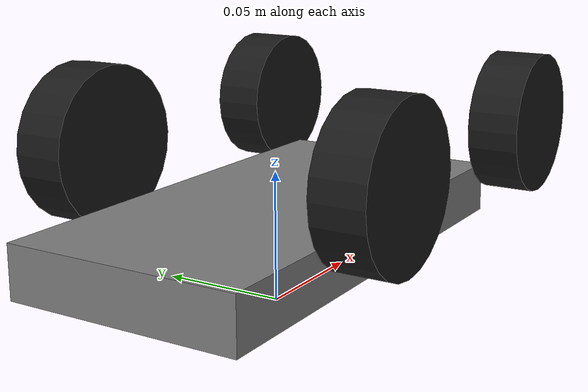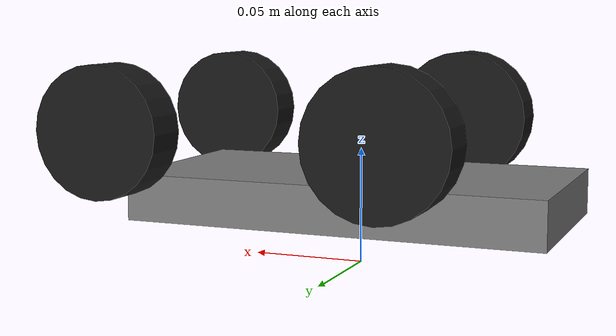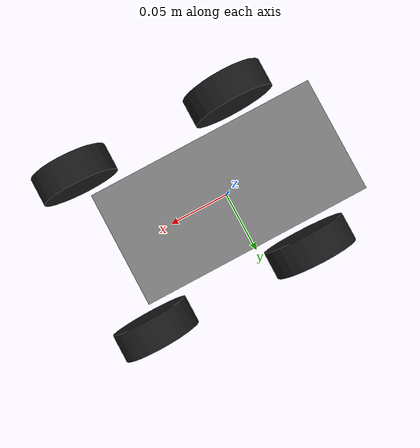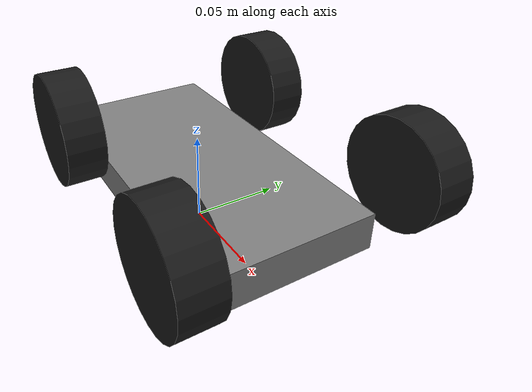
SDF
<sdf version="1.8">
  <model name="picarx">
    <!-- Base origin ~ at wheel center height to avoid bouncing -->
    <pose>0 0 0.03 0 0 0</pose>
    <static>false</static>

    <!-- BASE -->
    <link name="base_link">
      <pose>0 0 0 0 0 0</pose>
      <inertial>
        <mass>1.0</mass>
        <inertia>
          <!-- approx box 0.18 x 0.09 x 0.02 -->
          <ixx>0.00071</ixx>
          <iyy>0.00273</iyy>
          <izz>0.00338</izz>
        </inertia>
      </inertial>
      <collision name="base_col">
        <geometry><box><size>0.18 0.09 0.02</size></box></geometry>
        <surface><friction><ode><mu>1.0</mu><mu2>1.0</mu2></ode></friction></surface>
      </collision>
      <visual name="base_vis">
        <geometry><box><size>0.18 0.09 0.02</size></box></geometry>
        <material><ambient>0.5 0.5 0.5 1</ambient></material>
      </visual>
    </link>

    <!-- REAR LEFT WHEEL (driven) -->
    <link name="left_wheel">
      <pose>-0.03 0.06 0.03 1.5708 0 0</pose> <!-- roll 90deg so cylinder axis is Y -->
      <inertial><mass>0.05</mass><inertia>
        <ixx>0.00005</ixx><iyy>0.00002</iyy><izz>0.00005</izz>
      </inertia></inertial>
      <collision name="col">
        <geometry><cylinder><radius>0.03</radius><length>0.02</length></cylinder></geometry>
        <surface><friction><ode><mu>1.5</mu><mu2>1.5</mu2></ode></friction></surface>
      </collision>
      <visual name="vis">
        <geometry><cylinder><radius>0.03</radius><length>0.02</length></cylinder></geometry>
        <material><ambient>0.1 0.1 0.1 1</ambient></material>
      </visual>
    </link>

    <!-- REAR RIGHT WHEEL (driven) -->
    <link name="right_wheel">
      <pose>-0.03 -0.06 0.03 1.5708 0 0</pose>
      <inertial><mass>0.05</mass><inertia>
        <ixx>0.00005</ixx><iyy>0.00002</iyy><izz>0.00005</izz>
      </inertia></inertial>
      <collision name="col">
        <geometry><cylinder><radius>0.03</radius><length>0.02</length></cylinder></geometry>
        <surface><friction><ode><mu>1.5</mu><mu2>1.5</mu2></ode></friction></surface>
      </collision>
      <visual name="vis">
        <geometry><cylinder><radius>0.03</radius><length>0.02</length></cylinder></geometry>
        <material><ambient>0.1 0.1 0.1 1</ambient></material>
      </visual>
    </link>

    <!-- FRONT WHEELS (visual only so they don't fight physics) -->
    <link name="front_left_wheel">
      <pose>0.09 0.06 0.03 1.5708 0 0</pose>
      <visual name="vis">
        <geometry><cylinder><radius>0.028</radius><length>0.02</length></cylinder></geometry>
        <material><ambient>0.1 0.1 0.1 1</ambient></material>
      </visual>
    </link>
    <joint name="front_left_fixed" type="fixed">
      <parent>base_link</parent><child>front_left_wheel</child>
    </joint>

    <link name="front_right_wheel">
      <pose>0.09 -0.06 0.03 1.5708 0 0</pose>
      <visual name="vis">
        <geometry><cylinder><radius>0.028</radius><length>0.02</length></cylinder></geometry>
        <material><ambient>0.1 0.1 0.1 1</ambient></material>
      </visual>
    </link>
    <joint name="front_right_fixed" type="fixed">
      <parent>base_link</parent><child>front_right_wheel</child>
    </joint>

    <!-- DRIVEN JOINTS -->
    <joint name="left_wheel_joint" type="revolute">
      <parent>base_link</parent><child>left_wheel</child>
      <axis>
        <xyz>0 1 0</xyz>
        <dynamics><damping>0.2</damping></dynamics>
        <limit><lower>-1e16</lower><upper>1e16</upper></limit>
      </axis>
    </joint>

    <joint name="right_wheel_joint" type="revolute">
      <parent>base_link</parent><child>right_wheel</child>
      <axis>
        <xyz>0 1 0</xyz>
        <dynamics><damping>0.2</damping></dynamics>
        <limit><lower>-1e16</lower><upper>1e16</upper></limit>
      </axis>
    </joint>

    <!-- SIMPLE FORWARD FACING RAY ("ultrasonic") -->
    <link name="sonar_link">
      <pose>0.10 0 0.05 0 0 0</pose>
      <sensor name="front_scan" type="lidar">
        <always_on>true</always_on>
        <update_rate>15</update_rate>
        <visualize>true</visualize>
        <lidar>
          <scan><horizontal><samples>61</samples><resolution>1</resolution><min_angle>-0.45</min_angle><max_angle>0.45</max_angle></horizontal></scan>
          <range><min>0.03</min><max>2.5</max><resolution>0.01</resolution></range>
        </lidar>
        <topic>/picarx/scan</topic>
      </sensor>
    </link>
    <joint name="sonar_fixed" type="fixed"><parent>base_link</parent><child>sonar_link</child></joint>

    <!-- FRONT CAMERA -->
    <link name="camera_link">
      <pose>0.08 0 0.08 0 0 0</pose>
      <sensor name="front_camera" type="camera">
        <always_on>true</always_on>
        <update_rate>15</update_rate>
        <visualize>false</visualize>
        <camera>
          <horizontal_fov>1.047</horizontal_fov>
          <image><width>160</width><height>120</height><format>R8G8B8</format></image>
          <clip><near>0.02</near><far>10</far></clip>
        </camera>
        <topic>/picarx/image_raw</topic>
      </sensor>
    </link>
    <joint name="camera_fixed" type="fixed"><parent>base_link</parent><child>camera_link</child></joint>

    <!-- DIFF-DRIVE: subscribes to /picarx/cmd_vel, publishes /picarx/odometry -->
    <plugin name="gz::sim::systems::DiffDrive" filename="gz-sim-diff-drive-system">
      <left_joint>left_wheel_joint</left_joint>
      <right_joint>right_wheel_joint</right_joint>
      <wheel_separation>0.12</wheel_separation>
      <wheel_radius>0.03</wheel_radius>
      <topic>/picarx/cmd_vel</topic>
      <odom_topic>/picarx/odometry</odom_topic>
      <odom_frame>odom</odom_frame>
      <robot_base_frame>base_link</robot_base_frame>
      <max_linear_speed>1.0</max_linear_speed>  <!-- PHASE 1: Increased from 0.5 for consistency with MOCK mode -->
      <max_angular_speed>2.0</max_angular_speed>
    </plugin>
  </model>
</sdf>
